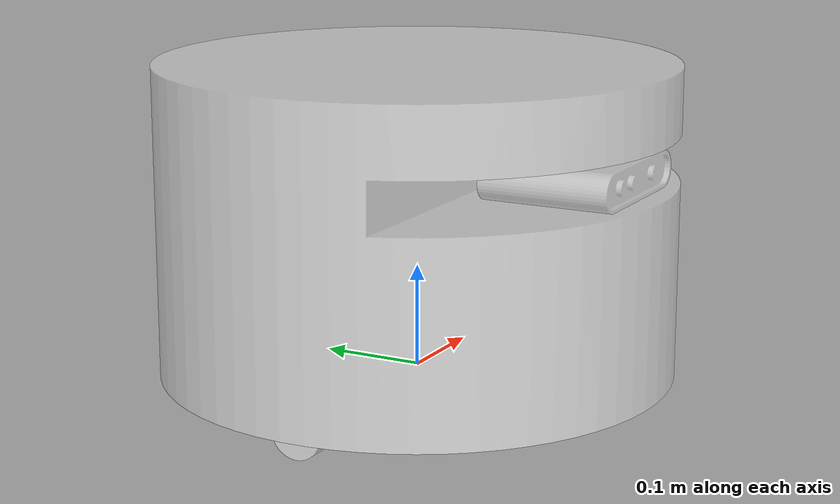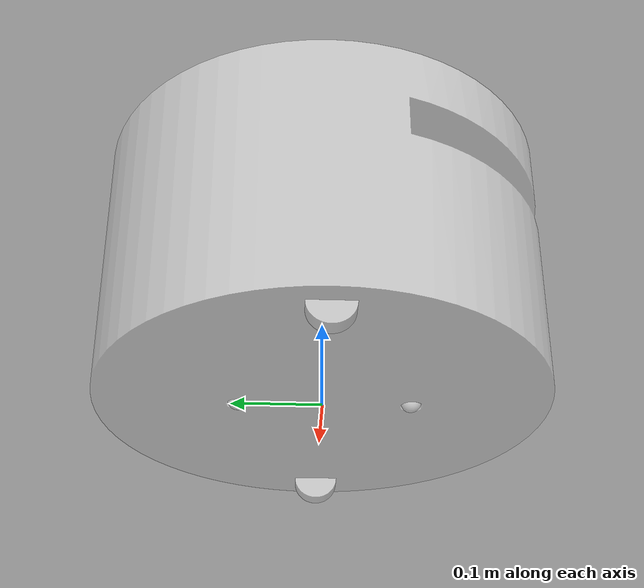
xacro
<?xml version="1.0" ?>
<robot name="my_rb1_robot" xmlns:xacro="http://www.ros.org/wiki/xacro">

<xacro:include filename="$(find my_rb1_description)/urdf/materials.xacro" />
<xacro:include filename="$(find my_rb1_description)/urdf/my_rb1_robot.trans" />
<xacro:include filename="$(find my_rb1_description)/urdf/my_rb1_robot.gazebo" />
<link name="base_link">
  <inertial>
    <origin xyz="-3.3628014589006247e-07 0.007600983535985833 0.14700935764945564" rpy="0 0 0"/>
    <mass value="19.982679556364577"/>
    <inertia ixx="0.455072" iyy="0.467831" izz="0.61727" ixy="0.0" iyz="-0.009966" ixz="-1e-06"/>
  </inertial>
  <visual>
    <origin xyz="0 0 0" rpy="0 0 0"/>
    <geometry>
      <mesh filename="package://my_rb1_description/meshes/base_link.stl" scale="0.001 0.001 0.001"/>
    </geometry>
    <material name="black"/>
  </visual>
  <collision>
    <origin xyz="0 0 0" rpy="0 0 0"/>
    <geometry>
      <mesh filename="package://my_rb1_description/meshes/base_link.stl" scale="0.001 0.001 0.001"/>
    </geometry>
  </collision>
</link>

<link name="left_wheel_1">
  <inertial>
    <origin xyz="0.010000000000000037 -3.6187644375762694e-18 -3.6187644375762694e-18" rpy="0 0 0"/>
    <mass value="0.30826877913349826"/>
    <inertia ixx="9.6e-05" iyy="5.8e-05" izz="5.8e-05" ixy="-0.0" iyz="0.0" ixz="0.0"/>
  </inertial>
  <visual>
    <origin xyz="-0.205 -0.0 -0.0" rpy="0 0 0"/>
    <geometry>
      <mesh filename="package://my_rb1_description/meshes/left_wheel_1.stl" scale="0.001 0.001 0.001"/>
    </geometry>
    <material name="silver"/>
  </visual>
  <collision>
    <origin xyz="-0.205 -0.0 -0.0" rpy="0 0 0"/>
    <geometry>
      <mesh filename="package://my_rb1_description/meshes/left_wheel_1.stl" scale="0.001 0.001 0.001"/>
    </geometry>
  </collision>
</link>

<link name="right_wheel_1">
  <inertial>
    <origin xyz="2.7755575615628914e-17 3.6187644375762694e-18 -3.6187644375762694e-18" rpy="0 0 0"/>
    <mass value="0.30826877913349826"/>
    <inertia ixx="9.6e-05" iyy="5.8e-05" izz="5.8e-05" ixy="-0.0" iyz="-0.0" ixz="-0.0"/>
  </inertial>
  <visual>
    <origin xyz="0.215 -0.0 -0.0" rpy="0 0 0"/>
    <geometry>
      <mesh filename="package://my_rb1_description/meshes/right_wheel_1.stl" scale="0.001 0.001 0.001"/>
    </geometry>
    <material name="silver"/>
  </visual>
  <collision>
    <origin xyz="0.215 -0.0 -0.0" rpy="0 0 0"/>
    <geometry>
      <mesh filename="package://my_rb1_description/meshes/right_wheel_1.stl" scale="0.001 0.001 0.001"/>
    </geometry>
  </collision>
</link>

<link name="laser_1">
  <inertial>
    <origin xyz="-0.00010414408678453328 -0.0049502137661978085 0.017591961082103563" rpy="0 0 0"/>
    <mass value="4.406839148425118"/>
    <inertia ixx="0.00488" iyy="0.008657" izz="0.012637" ixy="1.6e-05" iyz="0.0" ixz="-0.0"/>
  </inertial>
  <visual>
    <origin xyz="0.0 0.165 -0.188638" rpy="0 0 0"/>
    <geometry>
      <mesh filename="package://my_rb1_description/meshes/laser_1.stl" scale="0.001 0.001 0.001"/>
    </geometry>
    <material name="silver"/>
  </visual>
  <collision>
    <origin xyz="0.0 0.165 -0.188638" rpy="0 0 0"/>
    <geometry>
      <mesh filename="package://my_rb1_description/meshes/laser_1.stl" scale="0.001 0.001 0.001"/>
    </geometry>
  </collision>
</link>

<link name="front_caster_1">
  <inertial>
    <origin xyz="0.007194799126683857 -0.0010800410894050705 0.009488442446829497" rpy="0 0 0"/>
    <mass value="0.05520949516909528"/>
    <inertia ixx="3e-06" iyy="4e-06" izz="3e-06" ixy="0.0" iyz="0.0" ixz="0.0"/>
  </inertial>
  <visual>
    <origin xyz="-0.000302 0.097484 -0.0" rpy="0 0 0"/>
    <geometry>
      <mesh filename="package://my_rb1_description/meshes/front_caster_1.stl" scale="0.001 0.001 0.001"/>
    </geometry>
    <material name="silver"/>
  </visual>
  <collision>
    <origin xyz="-0.000302 0.097484 -0.0" rpy="0 0 0"/>
    <geometry>
      <mesh filename="package://my_rb1_description/meshes/front_caster_1.stl" scale="0.001 0.001 0.001"/>
    </geometry>
  </collision>
</link>

<link name="back_caster_1">
  <inertial>
    <origin xyz="0.007201162577009526 0.0003557586227844328 0.010080510133620674" rpy="0 0 0"/>
    <mass value="0.06173111557345195"/>
    <inertia ixx="4e-06" iyy="4e-06" izz="4e-06" ixy="-0.0" iyz="-0.0" ixz="0.0"/>
  </inertial>
  <visual>
    <origin xyz="-0.000879 -0.092304 -0.0" rpy="0 0 0"/>
    <geometry>
      <mesh filename="package://my_rb1_description/meshes/back_caster_1.stl" scale="0.001 0.001 0.001"/>
    </geometry>
    <material name="silver"/>
  </visual>
  <collision>
    <origin xyz="-0.000879 -0.092304 -0.0" rpy="0 0 0"/>
    <geometry>
      <mesh filename="package://my_rb1_description/meshes/back_caster_1.stl" scale="0.001 0.001 0.001"/>
    </geometry>
  </collision>
</link>

<joint name="left_joint" type="continuous">
  <origin xyz="0.205 0.0 0.0" rpy="0 0 0"/>
  <parent link="base_link"/>
  <child link="left_wheel_1"/>
  <axis xyz="1.0 0.0 0.0"/>
</joint>

<joint name="right_joint" type="continuous">
  <origin xyz="-0.215 0.0 0.0" rpy="0 0 0"/>
  <parent link="base_link"/>
  <child link="right_wheel_1"/>
  <axis xyz="1.0 0.0 0.0"/>
</joint>

<joint name="laser_joint" type="fixed">
  <origin xyz="0.0 -0.165 0.188638" rpy="0 0 0"/>
  <parent link="base_link"/>
  <child link="laser_1"/>
</joint>

<joint name="front_caster_joint" type="fixed">
  <origin xyz="0.000302 -0.097484 0.0" rpy="0 0 0"/>
  <parent link="base_link"/>
  <child link="front_caster_1"/>
</joint>

<joint name="back_caster_joint" type="fixed">
  <origin xyz="0.000879 0.092304 0.0" rpy="0 0 0"/>
  <parent link="base_link"/>
  <child link="back_caster_1"/>
</joint>

<!-- differential drive plugin -->
<gazebo>
  <plugin name="differential_drive_controller" filename="libgazebo_ros_diff_drive.so">
    <alwaysOn>true</alwaysOn>
    <use_sim_time>true</use_sim_time>
    <updateRate>500</updateRate>
    <legacyMode>false</legacyMode>
    <leftJoint>left_joint</leftJoint>
    <rightJoint>right_joint</rightJoint>
    <wheelSeparation>0.461</wheelSeparation>
    <wheelDiameter>0.05</wheelDiameter>
    <torque>500</torque>
    <commandTopic>cmd_vel</commandTopic>
    <odometryTopic>odom</odometryTopic>
    <odometryFrame>odom</odometryFrame>
    <robotBaseFrame>base_link</robotBaseFrame>
    <publishWheelTF>false</publishWheelTF>
    <publishWheelJointState>false</publishWheelJointState>
    <rosDebugLevel>na</rosDebugLevel>
    <wheelAcceleration>0</wheelAcceleration>
    <wheelTorque>500</wheelTorque>
    <odometrySource>world</odometrySource>
    <publishTf>1</publishTf>
    <publishOdomTF>true</publishOdomTF>
  </plugin>
</gazebo>

<!-- hokuyo -->
<gazebo reference="laser_1">
  <sensor type="gpu_ray" name="head_hokuyo_sensor">
    <pose>0 0 0 0 0 0</pose>
    <visualize>false</visualize>
    <update_rate>40</update_rate>
    <use_sim_time>true</use_sim_time>
    <ray>
      <scan>
        <horizontal>
          <samples>720</samples>
          <resolution>1</resolution>
          <min_angle>-1.570796</min_angle>
          <max_angle>1.570796</max_angle>
        </horizontal>
      </scan>
      <range>
        <min>0.10</min>
        <max>30.0</max>
        <resolution>0.01</resolution>
      </range>
      <noise>
        <type>gaussian</type>
        <mean>0.0</mean>
        <stddev>0.01</stddev>
      </noise>
    </ray>
    <plugin name="gazebo_ros_head_hokuyo_controller" filename="libgazebo_ros_gpu_laser.so">
      <topicName>/scan</topicName>
      <frameName>laser_1</frameName>
    </plugin>
  </sensor>
</gazebo>

</robot>

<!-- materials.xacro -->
<robot name="my_rb1_robot" xmlns:xacro="http://www.ros.org/wiki/xacro" >

<material name="silver">
  <color rgba="1.0 1.0 1.0 0.5"/>
</material>

<material name="black">
  <color rgba="1.0 1.0 1.0 0.5"/>
</material>

</robot>
